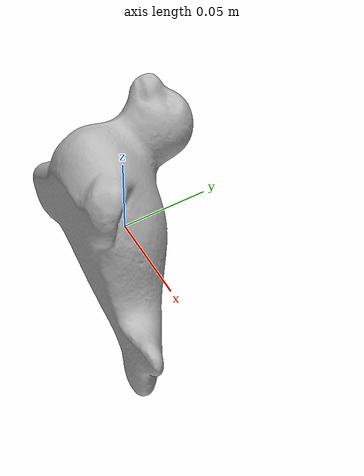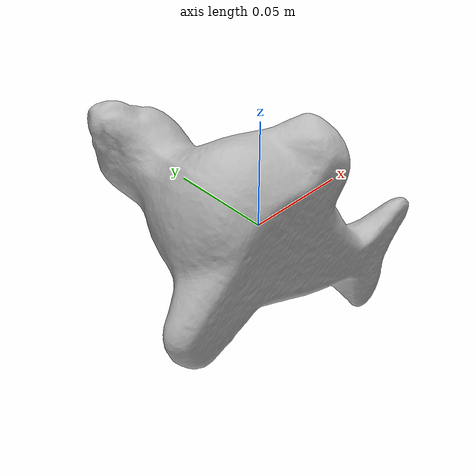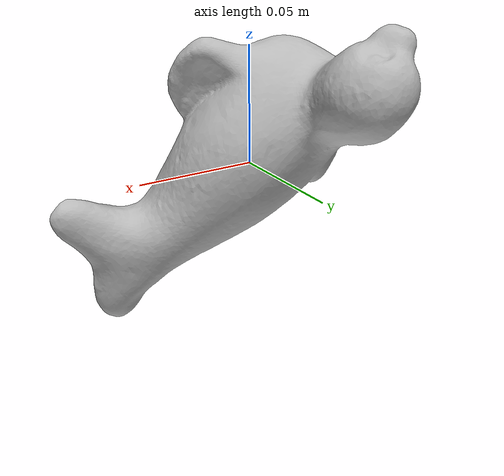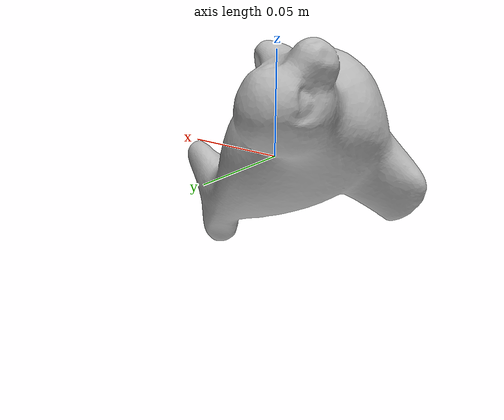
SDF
<?xml version='1.0'?>
<sdf version="1.4">
  <model name="Seal">
    <static>false</static>
    <link name="link">
      <inertial>
        <pose>-0.0021886866210741817 -0.0007874920531072918 0.005419411188832167 0.8829968169409161 -0.42784817691307214 -1.6402275510702142</pose>
        <mass>0.044655087419228606</mass>
        <inertia>
          <ixx>7.823484458981254e-05</ixx>
          <ixy>5.229749193106202e-21</ixy>
          <ixz>1.2880968015286864e-20</ixz>
          <iyy>6.977355191032419e-05</iyy>
          <iyz>-4.93191183226794e-21</iyz>
          <izz>3.0109395579877875e-05</izz>
        </inertia>
      </inertial>
      <collision name="collision">
        <geometry>
          <mesh>
            <!-- Use a downsampled mesh for collisions -->
            <uri>model:///Seal/Seal_250_collision.obj</uri>
	        </mesh>
        </geometry>
        <surface>
      </surface>
      </collision>
      <visual name="visual">
        <geometry>
          <mesh>
            <uri>model:///Seal/Seal_25k_tex.obj</uri>
	        </mesh>
        </geometry>
        <material>
          <script>
            <uri>model:///Seal/Seal.material</uri>
            <name>Seal</name>
          </script>
        </material>
      </visual>
    </link>
  </model>
</sdf>
